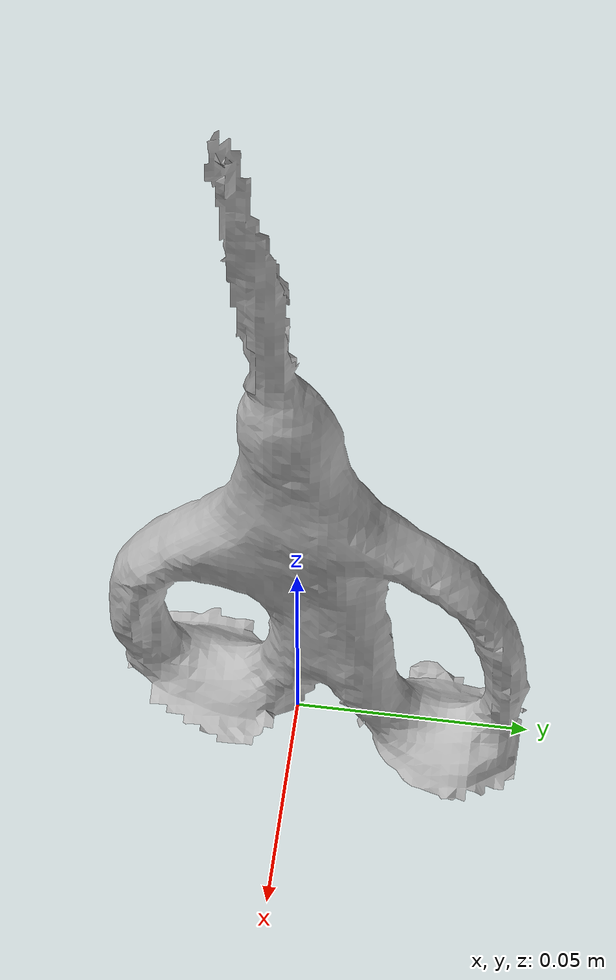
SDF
<?xml version="1.0" ?>
<sdf version="1.4">
  <model name="037_scissors">
    <pose>0 0 0  0 0 0</pose>
    <link name="body">
      <inertial>
        <!-- Volume:  7.0222466000e-05 -->
        <mass> 1.0 </mass>
        <!-- Center of mass: -2.5680000000e-04  3.0642000000e-04  5.1540120000e-02 -->
        <pose> -2.5680000000e-04  3.0642000000e-04  5.1540120000e-02 0 0 0 </pose>
        <!-- Inertia matrix -->
        <inertia>
          <ixx>  1.1856033894e-03 </ixx>
          <ixy> -4.5774867832e-05 </ixy>
          <ixz>  2.6572904745e-05 </ixz>
          <iyy>  8.9016510186e-04 </iyy>
          <iyz>  4.5989237974e-05 </iyz>
          <izz>  3.5077652927e-04 </izz>
        </inertia>
      </inertial>
      <visual name="visual">
        <geometry>
          <mesh>
            <uri>model://037_scissors/nontextured.stl</uri>
          </mesh>
        </geometry>
      </visual>
      <collision name="collision">
        <geometry>
          <mesh>
            <uri>model://037_scissors/nontextured.stl</uri>
          </mesh>
        </geometry>
        <max_contacts>10</max_contacts>
        <surface>
          <friction>
            <ode>
              <mu>0.8</mu>
              <mu2>0.8</mu2>
              <slip1>0</slip1>
              <slip2>0</slip2>
            </ode>
            <torsional>
              <ode/>
            </torsional>
          </friction>
          <contact>
            <ode>
              <kp>1000000.0</kp>
              <kd>1.0</kd>
              <max_vel>0.0</max_vel>
            </ode>
          </contact>
        </surface>
      </collision>
    </link>
  </model>
</sdf>
